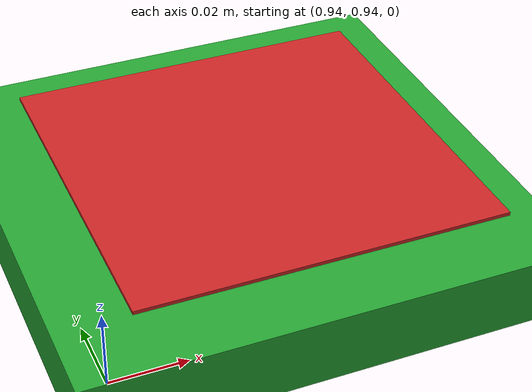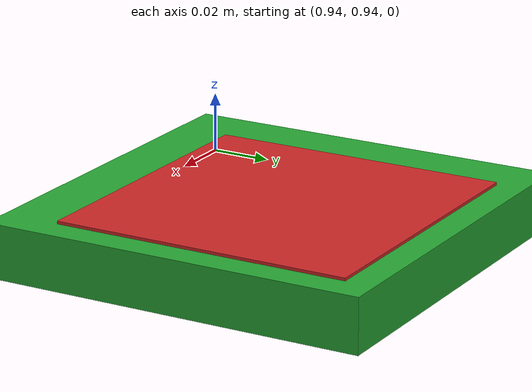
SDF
<?xml version="1.0" ?>

<sdf version="1.6">
  <world name="default">
    <!-- Physics ODE Solver Configuration -->
    <physics type="ode">
      <ode>
        <solver>
          <type>quick</type>
          <iters>100</iters>
          <sor>1.0</sor>
        </solver>
        <constraints>
          <cfm>0.0</cfm>
          <erp>0.9</erp>
          <contact_max_correcting_vel>0.1</contact_max_correcting_vel>
          <contact_surface_layer>0.0</contact_surface_layer>
        </constraints>
      </ode>
      <!-- Gazebo Unstable Flight issue:
          https://discuss.ardupilot.org/t/arducopter-3-6-sitl-with-gazebo-unstable-flight/34451/12
          Set update params accordingly to attempt to fix
      -->
      <real_time_update_rate>-1</real_time_update_rate>
    </physics>

    <include>
      <uri>model://sun</uri>
    </include>

    <include>
      <uri>model://ground_plane</uri>
    </include>

    <model name="ir_beacon_cart">
      <pose> 1 1 0 0 0 0 </pose>
      <include>
        <uri>model://rail_system</uri>
      </include>
      <plugin name="RailSim" filename="libRailSimPlugin.so"/>
    </model>

  </world>
</sdf>

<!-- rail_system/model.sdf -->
<sdf version="1.5">
  <model name="rail_system">
    <link name="link">
      <inertial>
        <pose>0 0 0 0 0 0</pose>
        <mass>50</mass>
        <inertia>
            <ixx>1</ixx>
            <ixy>1</ixy>
            <ixz>1</ixz>
            <iyy>1</iyy>
            <iyz>1</iyz>
            <izz>1</izz>
        </inertia>
      </inertial>
      <collision name="collision">
        <geometry>
          <box>
            <size>1.0 1.0 0.02</size>
          </box>
        </geometry>
        <surface>
          <bounce>
            <restitution_coefficient>0</restitution_coefficient>
            <!-- Threshold for Bounce Capture velocity (Velocity below this value will yield COR of 0 -->
          </bounce>
          <friction>
            <ode>
              <mu>1.0</mu>
              <mu2>1.0</mu2>
            </ode>
          </friction>
          <contact>
            <ode>
              <kp>1e+12</kp>
              <kd>0.01</kd>
              <max_vel>10</max_vel>
              <min_depth>0.003</min_depth>
            </ode>
          </contact>
        </surface>
      </collision>

      <sensor name='contact_sensor' type='contact'>
        <contact>
          <collision>collision</collision>
        </contact>
      </sensor>

      <visual name="visual2">
        <geometry>
          <box>
            <size>1.0 1.0 0.018</size>
          </box>
        </geometry>
        <material>
          <script>
            <name>Gazebo/Green</name>
          </script>
        </material>
      </visual>
      <visual name="visual">
        <geometry>
          <box>
            <size>0.1 0.1 0.02</size>
          </box>
        </geometry>
        <material>
          <script>
            <name>Gazebo/Red</name>
          </script>
        </material>
      </visual>
    </link>

  </model>
</sdf>
